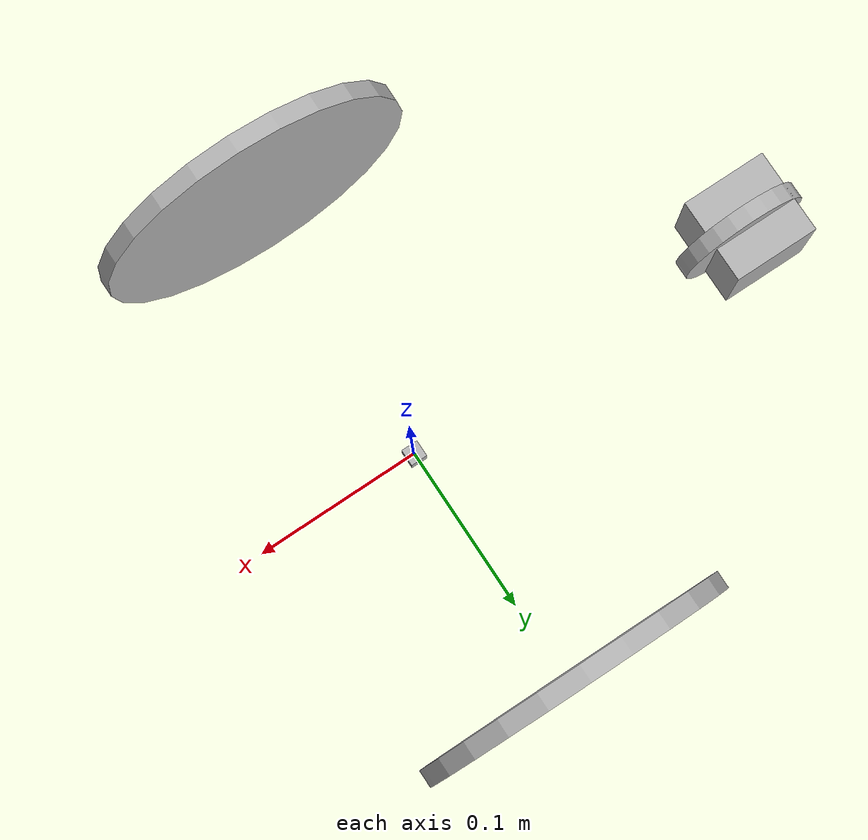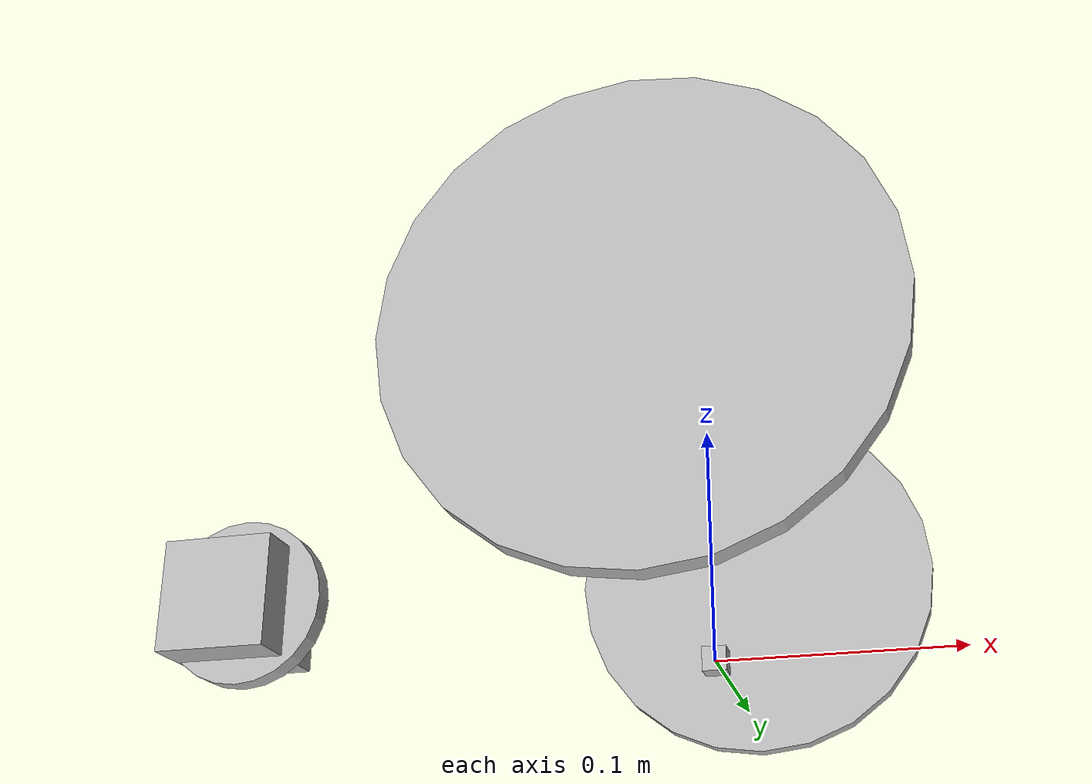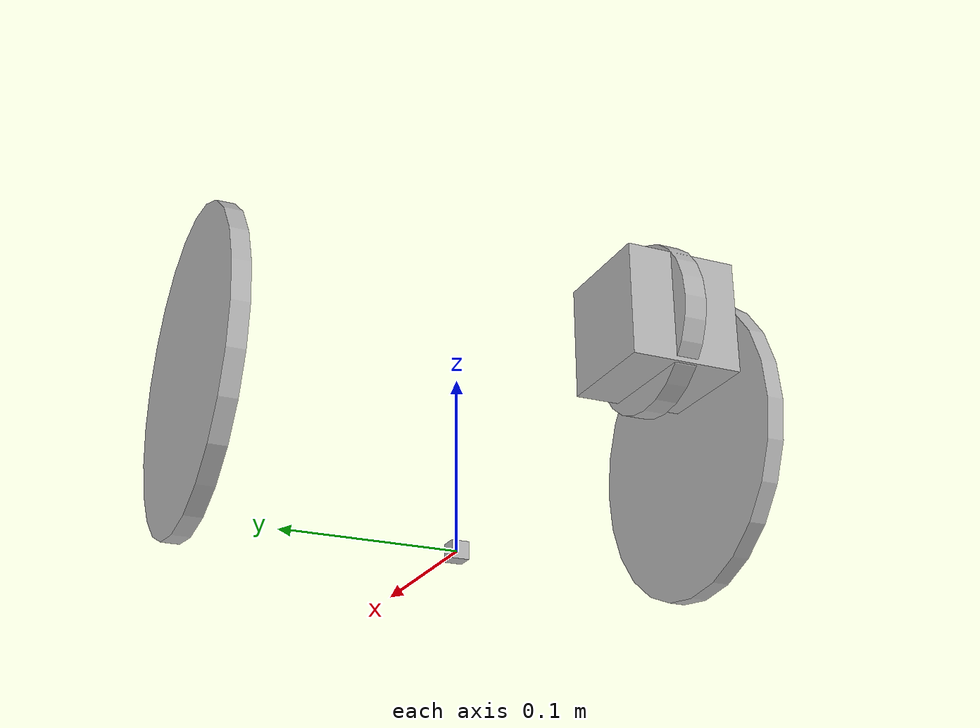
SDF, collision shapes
<sdf version='1.5'>
  <model name='pioneer3dx'>
    <link name='base_link'>
      <pose>0 0 0 0 -0 0</pose>
      <inertial>
        <pose>-0.000133842 0 0.000672573 0 -0 0</pose>
        <mass>3.5101</mass>
        <inertia>
          <ixx>4.00055</ixx>
          <ixy>0</ixy>
          <ixz>0.000109102</ixz>
          <iyy>4.00057</iyy>
          <iyz>0</iyz>
          <izz>4.00002</izz>
        </inertia>
      </inertial>
      <collision name='base_link_collision'>
        <pose>0 0 0 0 -0 0</pose>
        <geometry>
          <box>
            <size>0.01 0.01 0.01</size>
          </box>
        </geometry>
      </collision>
      <collision name='base_link_collision_base_link_1'>
        <pose>0.109 0 0.209 0 -0 0</pose>
        <geometry>
          <box>
            <size>0 0 0</size>
          </box>
        </geometry>
      </collision>
      <collision name='base_link_collision_base_link_2'>
        <pose>-0.198 0 0.208 0 -0 0</pose>
        <geometry>
          <box>
            <size>0 0 0</size>
          </box>
        </geometry>
      </collision>
      <collision name='base_link_collision_base_link_3'>
        <pose>0 0.15 0.08 -1.5708 0 0</pose>
        <geometry>
          <cylinder>
            <length>0.01</length>
            <radius>0.09</radius>
          </cylinder>
        </geometry>
      </collision>
      <collision name='base_link_collision_base_link_4'>
        <pose>0 -0.15 0.08 -1.5708 0 0</pose>
        <geometry>
          <cylinder>
            <length>0.01</length>
            <radius>0.09</radius>
          </cylinder>
        </geometry>
      </collision>
      <visual name='base_link_visual'>
        <pose>-0.045 0 0.148 0 -0 0</pose>
        <geometry>
          <mesh>
            <scale>1 1 1</scale>
            <uri>model://pioneer/description/meshes/p3dx_meshes/chassis.stl</uri>
          </mesh>
        </geometry>
      </visual>
      <visual name='base_link_visual_base_link_1'>
        <pose>0.109 0 0.209 0 -0 0</pose>
        <geometry>
          <mesh>
            <scale>1 1 1</scale>
            <uri>model://pioneer/description/meshes/p3dx_meshes/back_sonar.stl</uri>
          </mesh>
        </geometry>
      </visual>
      <visual name='base_link_visual_base_link_2'>
        <pose>-0.198 0 0.208 0 -0 0</pose>
        <geometry>
          <mesh>
            <scale>1 1 1</scale>
            <uri>model://pioneer/description/meshes/p3dx_meshes/front_sonar.stl</uri>
          </mesh>
        </geometry>
      </visual>
      <visual name='base_link_visual_base_link_3'>
        <pose>-0.045 0 0.234 0 -0 0</pose>
        <geometry>
          <mesh>
            <scale>1 1 1</scale>
            <uri>model://pioneer/description/meshes/p3dx_meshes/top.stl</uri>
          </mesh>
        </geometry>
      </visual>
      <visual name='base_link_visual_base_link_4'>
        <pose>0 0.15 0.08 0 -0 0</pose>
        <geometry>
          <mesh>
            <scale>1 1 1</scale>
            <uri>model://pioneer/description/meshes/p3dx_meshes/left_hubcap.stl</uri>
          </mesh>
        </geometry>
      </visual>
      <visual name='base_link_visual_base_link_5'>
        <pose>0 0.15 0.08 0 -0 0</pose>
        <geometry>
          <mesh>
            <scale>1 1 1</scale>
            <uri>model://pioneer/description/meshes/p3dx_meshes/left_wheel.stl</uri>
          </mesh>
        </geometry>
      </visual>
      <visual name='base_link_visual_base_link_6'>
        <pose>0 -0.15 0.08 0 -0 0</pose>
        <geometry>
          <mesh>
            <scale>1 1 1</scale>
            <uri>model://pioneer/description/meshes/p3dx_meshes/right_hubcap.stl</uri>
          </mesh>
        </geometry>
      </visual>
      <visual name='base_link_visual_base_link_7'>
        <pose>0 -0.15 0.08 0 -0 0</pose>
        <geometry>
          <mesh>
            <scale>1 1 1</scale>
            <uri>model://pioneer/description/meshes/p3dx_meshes/right_wheel.stl</uri>
          </mesh>
        </geometry>
      </visual>
      <velocity_decay/>
      <velocity_decay/>
      <velocity_decay/>
      <gravity>1</gravity>
      <velocity_decay/>
      <self_collide>0</self_collide>
    </link>
    <link name='caster_swivel'>
      <pose>-0.185 0 0.055 0 -0 0</pose>
      <inertial>
        <pose>0 0 0 0 -0 0</pose>
        <mass>0.1</mass>
        <inertia>
          <ixx>0.01</ixx>
          <ixy>0</ixy>
          <ixz>0</ixz>
          <iyy>0.01</iyy>
          <iyz>0</iyz>
          <izz>0.01</izz>
        </inertia>
      </inertial>
      <collision name='caster_swivel_collision'>
        <pose>0 0 0 0 -0 0</pose>
        <geometry>
          <box>
            <size>0 0 0</size>
          </box>
        </geometry>
        <surface>
          <contact>
            <ode/>
          </contact>
          <friction>
            <ode/>
          </friction>
        </surface>
      </collision>
      <visual name='caster_swivel_visual'>
        <pose>0 0 0 0 -0 0</pose>
        <geometry>
          <mesh>
            <scale>1 1 1</scale>
            <uri>model://pioneer/description/meshes/p3dx_meshes/caster_swivel.stl</uri>
          </mesh>
        </geometry>
        <material>
          <script>
            <name>Gazebo/Grey</name>
            <uri>__default__</uri>
          </script>
        </material>
      </visual>
      <gravity>1</gravity>
      <velocity_decay/>
      <self_collide>0</self_collide>
    </link>
    <joint name='base_caster_swivel_joint' type='revolute'>
      <child>caster_swivel</child>
      <parent>base_link</parent>
      <axis>
        <xyz>1 0 0</xyz>
        <limit>
          <lower>-1e+16</lower>
          <upper>1e+16</upper>
        </limit>
        <dynamics>
          <spring_reference>0</spring_reference>
          <spring_stiffness>0</spring_stiffness>
        </dynamics>
        <use_parent_model_frame>1</use_parent_model_frame>
      </axis>
    </joint>
    <link name='caster_wheel'>
      <pose>-0.211 0 0.039 0 -0 0</pose>
      <inertial>
        <pose>-0.000318182 0 -9.09091e-05 0 -0 0</pose>
        <mass>0.11</mass>
        <inertia>
          <ixx>0.0248235</ixx>
          <ixy>-0.00142347</ixy>
          <ixz>0.00100543</ixz>
          <iyy>0.0304364</iyy>
          <iyz>-8.54693e-06</iyz>
          <izz>0.0235281</izz>
        </inertia>
      </inertial>
      <collision name='caster_wheel_collision'>
        <pose>0 0 0 -1.5708 0 0</pose>
        <geometry>
          <cylinder>
            <length>0.01</length>
            <radius>0.0375</radius>
          </cylinder>
        </geometry>
      </collision>
      <collision name='caster_wheel_collision_caster_wheel_1'>
        <pose>-0.0035 0 -0.001 0 -0 0</pose>
        <geometry>
          <box>
            <size>0.05 0.05 0.05</size>
          </box>
        </geometry>
      </collision>
      <visual name='caster_wheel_visual'>
        <pose>0 0 0 0 -0 0</pose>
        <geometry>
          <mesh>
            <scale>1 1 1</scale>
            <uri>model://pioneer/description/meshes/p3dx_meshes/caster_wheel.stl</uri>
          </mesh>
        </geometry>
      </visual>
      <visual name='caster_wheel_visual_caster_wheel_1'>
        <pose>-0.0035 0 -0.001 0 -0 0</pose>
        <geometry>
          <mesh>
            <scale>1 1 1</scale>
            <uri>model://pioneer/description/meshes/p3dx_meshes/caster_hubcap.stl</uri>
          </mesh>
        </geometry>
      </visual>
      <gravity>1</gravity>
      <velocity_decay/>
      <self_collide>0</self_collide>
    </link>
    <joint name='caster_swivel_hubcap_joint' type='revolute'>
      <child>caster_wheel</child>
      <parent>caster_swivel</parent>
      <axis>
        <xyz>0 1 0</xyz>
        <limit>
          <lower>-1e+16</lower>
          <upper>1e+16</upper>
        </limit>
        <dynamics>
          <spring_reference>0</spring_reference>
          <spring_stiffness>0</spring_stiffness>
        </dynamics>
        <use_parent_model_frame>1</use_parent_model_frame>
      </axis>
    </joint>
    <static>0</static>
    <plugin name='differential_drive_controller' filename='libgazebo_ros_diff_drive.so'>
      <alwaysOn>true</alwaysOn>
      <updateRate>100</updateRate>
      <leftJoint>left_wheel_joint</leftJoint>
      <rightJoint>right_wheel_joint</rightJoint>
      <wheelSeparation>0.158</wheelSeparation>
      <wheelDiameter>0.12</wheelDiameter>
      <torque>5</torque>
      <commandTopic>cmd_vel</commandTopic>
      <robotBaseFrame>base_link</robotBaseFrame>
      <odometryTopic>odom</odometryTopic>
      <odometryFrame>odom</odometryFrame>
    </plugin>
  </model>
</sdf>
